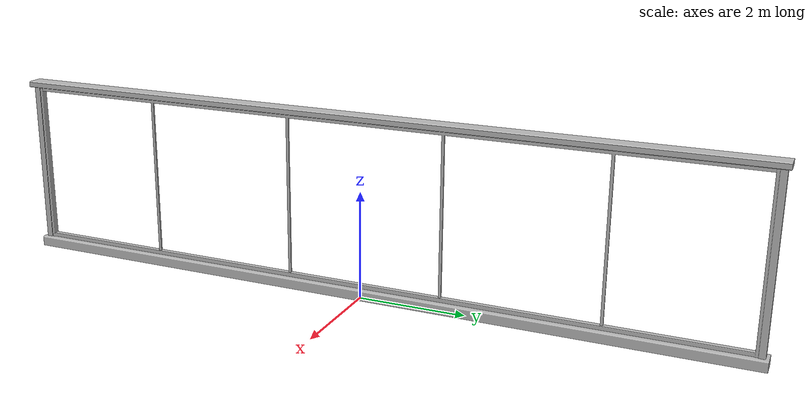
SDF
<?xml version="1.0" ?>
<sdf version="1.6">
  <model name="aws_robomaker_retail_ShopWindow_01">
    <link name="link">
      <inertial>
        <mass>1</mass>
      </inertial>
      <collision name="collision">
        <geometry>
          <mesh>
            <uri>file://models/aws_robomaker_retail_ShopWindow_01/meshes/aws_ShopWindow_01_collision.DAE</uri>
            <scale>1 1 1</scale>
          </mesh>
        </geometry>
      </collision>
      <visual name="visual">
	    <geometry>
          <mesh>
            <uri>file://models/aws_robomaker_retail_ShopWindow_01/meshes/aws_ShopWindow_01_visual.DAE</uri>
          </mesh>
        </geometry>
      </visual>
    </link>
	<static>1</static>
  </model>
</sdf>
